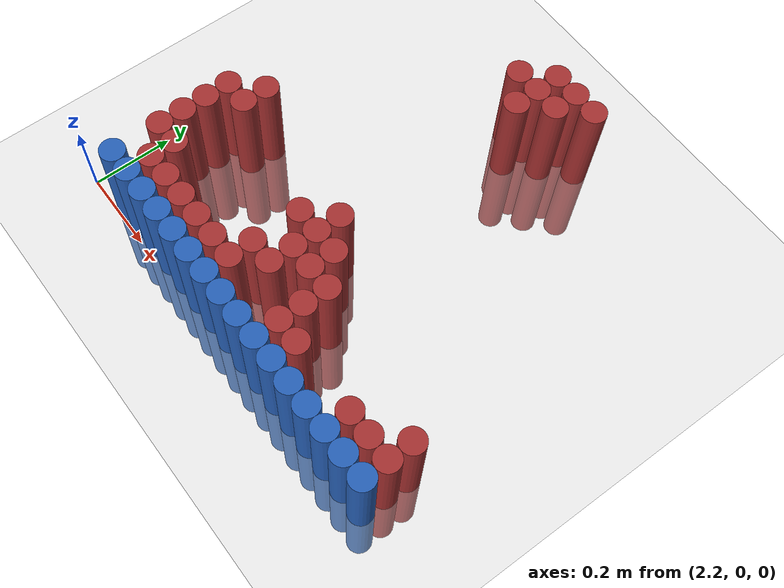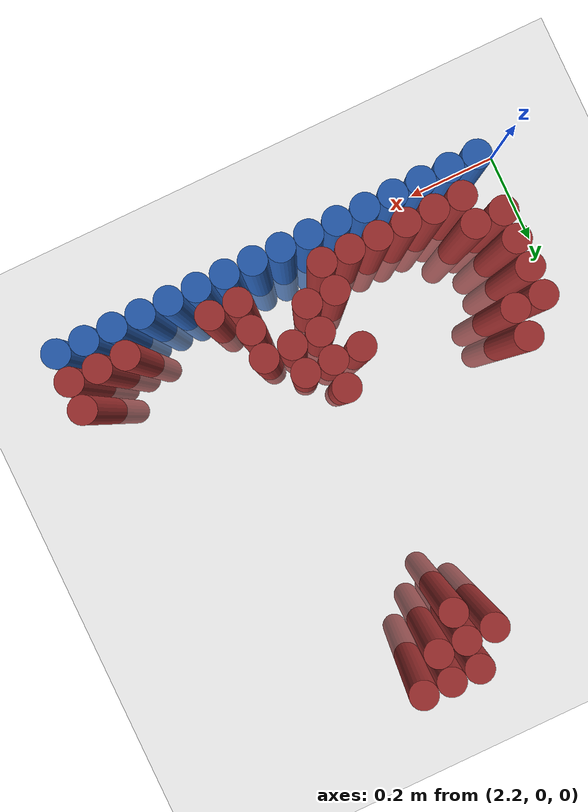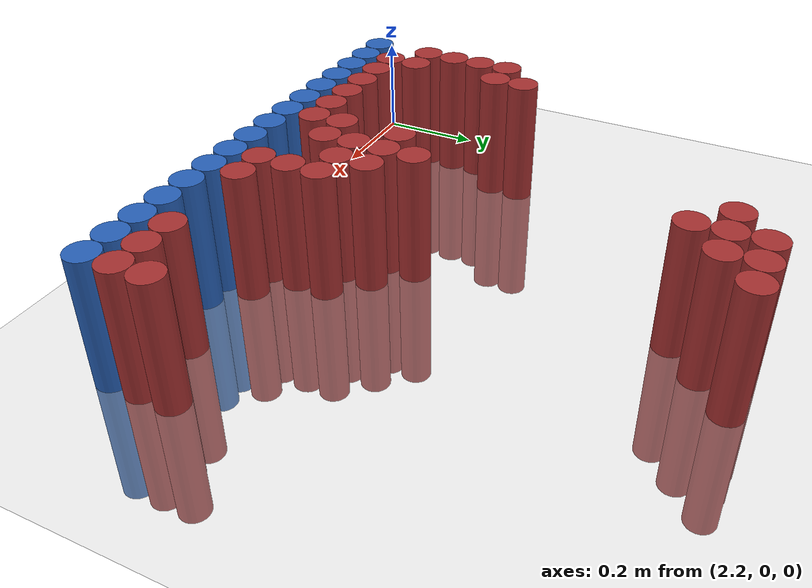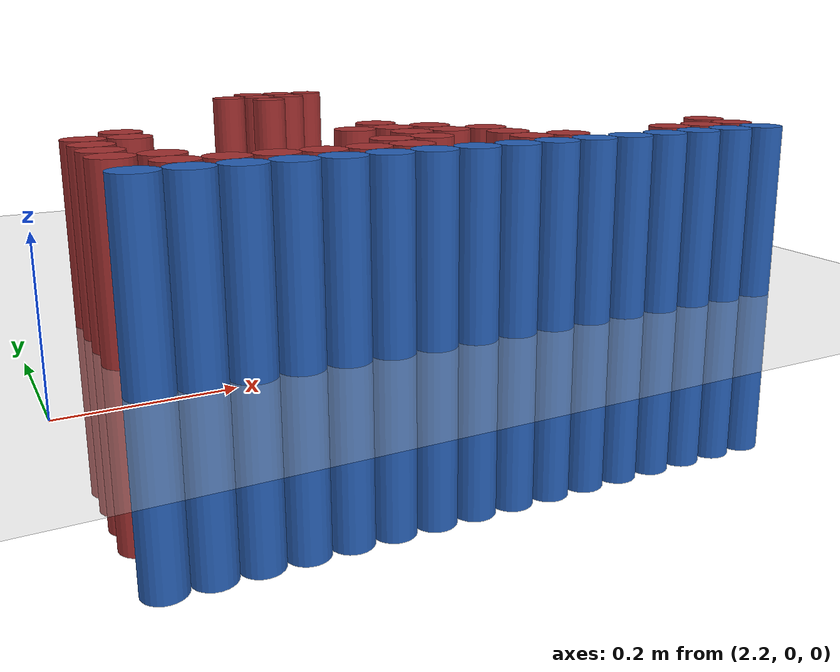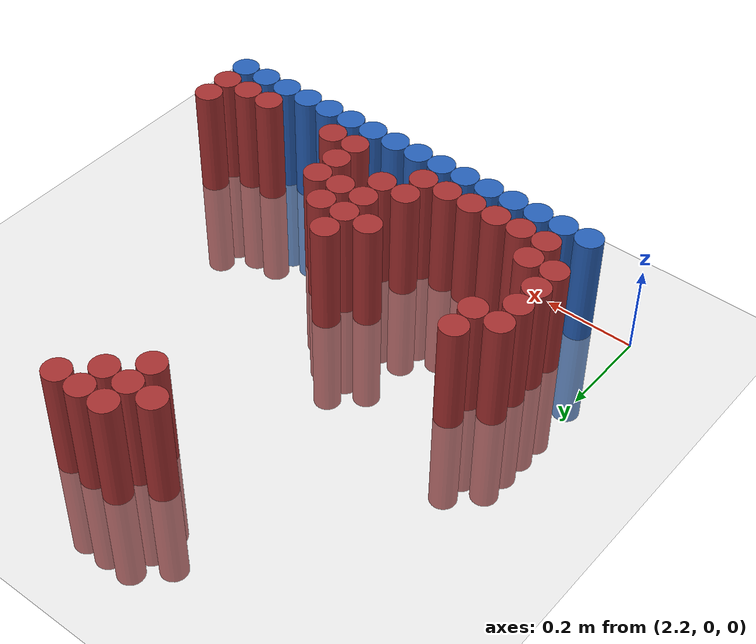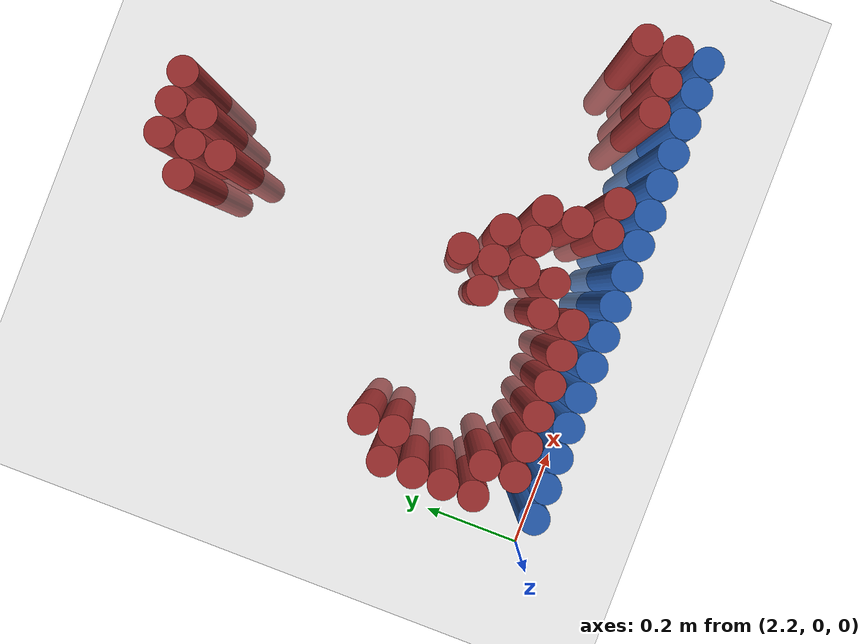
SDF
<sdf version="1.6">
 <world name="default">
  <model name="ground_plane">
   <static>1</static>
   <link name="link">
    <collision name="collision">
     <geometry><plane><normal>0 0 1</normal><size>100 100</size></plane></geometry>
     <surface><friction><ode><mu>100</mu><mu2>50</mu2></ode></friction></surface>
    </collision>
    <visual name="visual">
     <cast_shadows>0</cast_shadows>
     <geometry><plane><normal>0 0 1</normal><size>100 100</size></plane></geometry>
     <material>
      <script><uri>file://media/materials/scripts/gazebo.material</uri><name>Gazebo/Grey</name></script>
     </material>
    </visual>
   </link>
  </model>
  <model name="unit_cylinder_243">
   <static>1</static>
   <pose>2.730000 0.930000 0.000000 0.000000 0.000000 0.000000</pose>
   <link name="link">
    <inertial>
     <mass>1</mass>
     <inertia><ixx>0.145833</ixx><ixy>0</ixy><ixz>0</ixz><iyy>0.145833</iyy><iyz>0</iyz><izz>0.125</izz></inertia>
    </inertial>
    <collision name="collision">
     <geometry><cylinder><radius>0.030000</radius><length>0.5</length></cylinder></geometry>
    </collision>
    <visual name="visual">
     <geometry><cylinder><radius>0.030000</radius><length>0.5</length></cylinder></geometry>
     <material>
      <ambient>0.648000 0.192000 0.192000 1</ambient>
      <diffuse>0.648000 0.192000 0.192000 1</diffuse>
     </material>
     <material>
      <script><name>Gazebo/Grey</name><uri>file://media/materials/scripts/gazebo.material</uri></script>
     </material>
    </visual>
   </link>
  </model>
  <model name="unit_cylinder_244">
   <static>1</static>
   <pose>2.790000 0.930000 0.000000 0.000000 0.000000 0.000000</pose>
   <link name="link">
    <inertial>
     <mass>1</mass>
     <inertia><ixx>0.145833</ixx><ixy>0</ixy><ixz>0</ixz><iyy>0.145833</iyy><iyz>0</iyz><izz>0.125</izz></inertia>
    </inertial>
    <collision name="collision">
     <geometry><cylinder><radius>0.030000</radius><length>0.5</length></cylinder></geometry>
    </collision>
    <visual name="visual">
     <geometry><cylinder><radius>0.030000</radius><length>0.5</length></cylinder></geometry>
     <material>
      <ambient>0.648000 0.192000 0.192000 1</ambient>
      <diffuse>0.648000 0.192000 0.192000 1</diffuse>
     </material>
     <material>
      <script><name>Gazebo/Grey</name><uri>file://media/materials/scripts/gazebo.material</uri></script>
     </material>
    </visual>
   </link>
  </model>
  <model name="unit_cylinder_245">
   <static>1</static>
   <pose>2.850000 0.930000 0.000000 0.000000 0.000000 0.000000</pose>
   <link name="link">
    <inertial>
     <mass>1</mass>
     <inertia><ixx>0.145833</ixx><ixy>0</ixy><ixz>0</ixz><iyy>0.145833</iyy><iyz>0</iyz><izz>0.125</izz></inertia>
    </inertial>
    <collision name="collision">
     <geometry><cylinder><radius>0.030000</radius><length>0.5</length></cylinder></geometry>
    </collision>
    <visual name="visual">
     <geometry><cylinder><radius>0.030000</radius><length>0.5</length></cylinder></geometry>
     <material>
      <ambient>0.648000 0.192000 0.192000 1</ambient>
      <diffuse>0.648000 0.192000 0.192000 1</diffuse>
     </material>
     <material>
      <script><name>Gazebo/Grey</name><uri>file://media/materials/scripts/gazebo.material</uri></script>
     </material>
    </visual>
   </link>
  </model>
  <model name="unit_cylinder_249">
   <static>1</static>
   <pose>2.670000 0.870000 0.000000 0.000000 0.000000 0.000000</pose>
   <link name="link">
    <inertial>
     <mass>1</mass>
     <inertia><ixx>0.145833</ixx><ixy>0</ixy><ixz>0</ixz><iyy>0.145833</iyy><iyz>0</iyz><izz>0.125</izz></inertia>
    </inertial>
    <collision name="collision">
     <geometry><cylinder><radius>0.030000</radius><length>0.5</length></cylinder></geometry>
    </collision>
    <visual name="visual">
     <geometry><cylinder><radius>0.030000</radius><length>0.5</length></cylinder></geometry>
     <material>
      <ambient>0.648000 0.192000 0.192000 1</ambient>
      <diffuse>0.648000 0.192000 0.192000 1</diffuse>
     </material>
     <material>
      <script><name>Gazebo/Grey</name><uri>file://media/materials/scripts/gazebo.material</uri></script>
     </material>
    </visual>
   </link>
  </model>
  <model name="unit_cylinder_250">
   <static>1</static>
   <pose>2.730000 0.870000 0.000000 0.000000 0.000000 0.000000</pose>
   <link name="link">
    <inertial>
     <mass>1</mass>
     <inertia><ixx>0.145833</ixx><ixy>0</ixy><ixz>0</ixz><iyy>0.145833</iyy><iyz>0</iyz><izz>0.125</izz></inertia>
    </inertial>
    <collision name="collision">
     <geometry><cylinder><radius>0.030000</radius><length>0.5</length></cylinder></geometry>
    </collision>
    <visual name="visual">
     <geometry><cylinder><radius>0.030000</radius><length>0.5</length></cylinder></geometry>
     <material>
      <ambient>0.648000 0.192000 0.192000 1</ambient>
      <diffuse>0.648000 0.192000 0.192000 1</diffuse>
     </material>
     <material>
      <script><name>Gazebo/Grey</name><uri>file://media/materials/scripts/gazebo.material</uri></script>
     </material>
    </visual>
   </link>
  </model>
  <model name="unit_cylinder_251">
   <static>1</static>
   <pose>2.790000 0.870000 0.000000 0.000000 0.000000 0.000000</pose>
   <link name="link">
    <inertial>
     <mass>1</mass>
     <inertia><ixx>0.145833</ixx><ixy>0</ixy><ixz>0</ixz><iyy>0.145833</iyy><iyz>0</iyz><izz>0.125</izz></inertia>
    </inertial>
    <collision name="collision">
     <geometry><cylinder><radius>0.030000</radius><length>0.5</length></cylinder></geometry>
    </collision>
    <visual name="visual">
     <geometry><cylinder><radius>0.030000</radius><length>0.5</length></cylinder></geometry>
     <material>
      <ambient>0.648000 0.192000 0.192000 1</ambient>
      <diffuse>0.648000 0.192000 0.192000 1</diffuse>
     </material>
     <material>
      <script><name>Gazebo/Grey</name><uri>file://media/materials/scripts/gazebo.material</uri></script>
     </material>
    </visual>
   </link>
  </model>
  <model name="unit_cylinder_255">
   <static>1</static>
   <pose>2.730000 0.810000 0.000000 0.000000 0.000000 0.000000</pose>
   <link name="link">
    <inertial>
     <mass>1</mass>
     <inertia><ixx>0.145833</ixx><ixy>0</ixy><ixz>0</ixz><iyy>0.145833</iyy><iyz>0</iyz><izz>0.125</izz></inertia>
    </inertial>
    <collision name="collision">
     <geometry><cylinder><radius>0.030000</radius><length>0.5</length></cylinder></geometry>
    </collision>
    <visual name="visual">
     <geometry><cylinder><radius>0.030000</radius><length>0.5</length></cylinder></geometry>
     <material>
      <ambient>0.648000 0.192000 0.192000 1</ambient>
      <diffuse>0.648000 0.192000 0.192000 1</diffuse>
     </material>
     <material>
      <script><name>Gazebo/Grey</name><uri>file://media/materials/scripts/gazebo.material</uri></script>
     </material>
    </visual>
   </link>
  </model>
  <model name="unit_cylinder_284">
   <static>1</static>
   <pose>2.370000 0.390000 0.000000 0.000000 0.000000 0.000000</pose>
   <link name="link">
    <inertial>
     <mass>1</mass>
     <inertia><ixx>0.145833</ixx><ixy>0</ixy><ixz>0</ixz><iyy>0.145833</iyy><iyz>0</iyz><izz>0.125</izz></inertia>
    </inertial>
    <collision name="collision">
     <geometry><cylinder><radius>0.030000</radius><length>0.5</length></cylinder></geometry>
    </collision>
    <visual name="visual">
     <geometry><cylinder><radius>0.030000</radius><length>0.5</length></cylinder></geometry>
     <material>
      <ambient>0.648000 0.192000 0.192000 1</ambient>
      <diffuse>0.648000 0.192000 0.192000 1</diffuse>
     </material>
     <material>
      <script><name>Gazebo/Grey</name><uri>file://media/materials/scripts/gazebo.material</uri></script>
     </material>
    </visual>
   </link>
  </model>
  <model name="unit_cylinder_290">
   <static>1</static>
   <pose>2.310000 0.330000 0.000000 0.000000 0.000000 0.000000</pose>
   <link name="link">
    <inertial>
     <mass>1</mass>
     <inertia><ixx>0.145833</ixx><ixy>0</ixy><ixz>0</ixz><iyy>0.145833</iyy><iyz>0</iyz><izz>0.125</izz></inertia>
    </inertial>
    <collision name="collision">
     <geometry><cylinder><radius>0.030000</radius><length>0.5</length></cylinder></geometry>
    </collision>
    <visual name="visual">
     <geometry><cylinder><radius>0.030000</radius><length>0.5</length></cylinder></geometry>
     <material>
      <ambient>0.648000 0.192000 0.192000 1</ambient>
      <diffuse>0.648000 0.192000 0.192000 1</diffuse>
     </material>
     <material>
      <script><name>Gazebo/Grey</name><uri>file://media/materials/scripts/gazebo.material</uri></script>
     </material>
    </visual>
   </link>
  </model>
  <model name="unit_cylinder_291">
   <static>1</static>
   <pose>2.370000 0.330000 0.000000 0.000000 0.000000 0.000000</pose>
   <link name="link">
    <inertial>
     <mass>1</mass>
     <inertia><ixx>0.145833</ixx><ixy>0</ixy><ixz>0</ixz><iyy>0.145833</iyy><iyz>0</iyz><izz>0.125</izz></inertia>
    </inertial>
    <collision name="collision">
     <geometry><cylinder><radius>0.030000</radius><length>0.5</length></cylinder></geometry>
    </collision>
    <visual name="visual">
     <geometry><cylinder><radius>0.030000</radius><length>0.5</length></cylinder></geometry>
     <material>
      <ambient>0.648000 0.192000 0.192000 1</ambient>
      <diffuse>0.648000 0.192000 0.192000 1</diffuse>
     </material>
     <material>
      <script><name>Gazebo/Grey</name><uri>file://media/materials/scripts/gazebo.material</uri></script>
     </material>
    </visual>
   </link>
  </model>
  <model name="unit_cylinder_292">
   <static>1</static>
   <pose>2.730000 0.330000 0.000000 0.000000 0.000000 0.000000</pose>
   <link name="link">
    <inertial>
     <mass>1</mass>
     <inertia><ixx>0.145833</ixx><ixy>0</ixy><ixz>0</ixz><iyy>0.145833</iyy><iyz>0</iyz><izz>0.125</izz></inertia>
    </inertial>
    <collision name="collision">
     <geometry><cylinder><radius>0.030000</radius><length>0.5</length></cylinder></geometry>
    </collision>
    <visual name="visual">
     <geometry><cylinder><radius>0.030000</radius><length>0.5</length></cylinder></geometry>
     <material>
      <ambient>0.648000 0.192000 0.192000 1</ambient>
      <diffuse>0.648000 0.192000 0.192000 1</diffuse>
     </material>
     <material>
      <script><name>Gazebo/Grey</name><uri>file://media/materials/scripts/gazebo.material</uri></script>
     </material>
    </visual>
   </link>
  </model>
  <model name="unit_cylinder_296">
   <static>1</static>
   <pose>2.310000 0.270000 0.000000 0.000000 0.000000 0.000000</pose>
   <link name="link">
    <inertial>
     <mass>1</mass>
     <inertia><ixx>0.145833</ixx><ixy>0</ixy><ixz>0</ixz><iyy>0.145833</iyy><iyz>0</iyz><izz>0.125</izz></inertia>
    </inertial>
    <collision name="collision">
     <geometry><cylinder><radius>0.030000</radius><length>0.5</length></cylinder></geometry>
    </collision>
    <visual name="visual">
     <geometry><cylinder><radius>0.030000</radius><length>0.5</length></cylinder></geometry>
     <material>
      <ambient>0.648000 0.192000 0.192000 1</ambient>
      <diffuse>0.648000 0.192000 0.192000 1</diffuse>
     </material>
     <material>
      <script><name>Gazebo/Grey</name><uri>file://media/materials/scripts/gazebo.material</uri></script>
     </material>
    </visual>
   </link>
  </model>
  <model name="unit_cylinder_297">
   <static>1</static>
   <pose>2.670000 0.270000 0.000000 0.000000 0.000000 0.000000</pose>
   <link name="link">
    <inertial>
     <mass>1</mass>
     <inertia><ixx>0.145833</ixx><ixy>0</ixy><ixz>0</ixz><iyy>0.145833</iyy><iyz>0</iyz><izz>0.125</izz></inertia>
    </inertial>
    <collision name="collision">
     <geometry><cylinder><radius>0.030000</radius><length>0.5</length></cylinder></geometry>
    </collision>
    <visual name="visual">
     <geometry><cylinder><radius>0.030000</radius><length>0.5</length></cylinder></geometry>
     <material>
      <ambient>0.648000 0.192000 0.192000 1</ambient>
      <diffuse>0.648000 0.192000 0.192000 1</diffuse>
     </material>
     <material>
      <script><name>Gazebo/Grey</name><uri>file://media/materials/scripts/gazebo.material</uri></script>
     </material>
    </visual>
   </link>
  </model>
  <model name="unit_cylinder_298">
   <static>1</static>
   <pose>2.730000 0.270000 0.000000 0.000000 0.000000 0.000000</pose>
   <link name="link">
    <inertial>
     <mass>1</mass>
     <inertia><ixx>0.145833</ixx><ixy>0</ixy><ixz>0</ixz><iyy>0.145833</iyy><iyz>0</iyz><izz>0.125</izz></inertia>
    </inertial>
    <collision name="collision">
     <geometry><cylinder><radius>0.030000</radius><length>0.5</length></cylinder></geometry>
    </collision>
    <visual name="visual">
     <geometry><cylinder><radius>0.030000</radius><length>0.5</length></cylinder></geometry>
     <material>
      <ambient>0.648000 0.192000 0.192000 1</ambient>
      <diffuse>0.648000 0.192000 0.192000 1</diffuse>
     </material>
     <material>
      <script><name>Gazebo/Grey</name><uri>file://media/materials/scripts/gazebo.material</uri></script>
     </material>
    </visual>
   </link>
  </model>
  <model name="unit_cylinder_299">
   <static>1</static>
   <pose>2.790000 0.270000 0.000000 0.000000 0.000000 0.000000</pose>
   <link name="link">
    <inertial>
     <mass>1</mass>
     <inertia><ixx>0.145833</ixx><ixy>0</ixy><ixz>0</ixz><iyy>0.145833</iyy><iyz>0</iyz><izz>0.125</izz></inertia>
    </inertial>
    <collision name="collision">
     <geometry><cylinder><radius>0.030000</radius><length>0.5</length></cylinder></geometry>
    </collision>
    <visual name="visual">
     <geometry><cylinder><radius>0.030000</radius><length>0.5</length></cylinder></geometry>
     <material>
      <ambient>0.648000 0.192000 0.192000 1</ambient>
      <diffuse>0.648000 0.192000 0.192000 1</diffuse>
     </material>
     <material>
      <script><name>Gazebo/Grey</name><uri>file://media/materials/scripts/gazebo.material</uri></script>
     </material>
    </visual>
   </link>
  </model>
  <model name="unit_cylinder_301">
   <static>1</static>
   <pose>2.310000 0.210000 0.000000 0.000000 0.000000 0.000000</pose>
   <link name="link">
    <inertial>
     <mass>1</mass>
     <inertia><ixx>0.145833</ixx><ixy>0</ixy><ixz>0</ixz><iyy>0.145833</iyy><iyz>0</iyz><izz>0.125</izz></inertia>
    </inertial>
    <collision name="collision">
     <geometry><cylinder><radius>0.030000</radius><length>0.5</length></cylinder></geometry>
    </collision>
    <visual name="visual">
     <geometry><cylinder><radius>0.030000</radius><length>0.5</length></cylinder></geometry>
     <material>
      <ambient>0.648000 0.192000 0.192000 1</ambient>
      <diffuse>0.648000 0.192000 0.192000 1</diffuse>
     </material>
     <material>
      <script><name>Gazebo/Grey</name><uri>file://media/materials/scripts/gazebo.material</uri></script>
     </material>
    </visual>
   </link>
  </model>
  <model name="unit_cylinder_302">
   <static>1</static>
   <pose>2.730000 0.210000 0.000000 0.000000 0.000000 0.000000</pose>
   <link name="link">
    <inertial>
     <mass>1</mass>
     <inertia><ixx>0.145833</ixx><ixy>0</ixy><ixz>0</ixz><iyy>0.145833</iyy><iyz>0</iyz><izz>0.125</izz></inertia>
    </inertial>
    <collision name="collision">
     <geometry><cylinder><radius>0.030000</radius><length>0.5</length></cylinder></geometry>
    </collision>
    <visual name="visual">
     <geometry><cylinder><radius>0.030000</radius><length>0.5</length></cylinder></geometry>
     <material>
      <ambient>0.648000 0.192000 0.192000 1</ambient>
      <diffuse>0.648000 0.192000 0.192000 1</diffuse>
     </material>
     <material>
      <script><name>Gazebo/Grey</name><uri>file://media/materials/scripts/gazebo.material</uri></script>
     </material>
    </visual>
   </link>
  </model>
  <model name="unit_cylinder_303">
   <static>1</static>
   <pose>2.790000 0.210000 0.000000 0.000000 0.000000 0.000000</pose>
   <link name="link">
    <inertial>
     <mass>1</mass>
     <inertia><ixx>0.145833</ixx><ixy>0</ixy><ixz>0</ixz><iyy>0.145833</iyy><iyz>0</iyz><izz>0.125</izz></inertia>
    </inertial>
    <collision name="collision">
     <geometry><cylinder><radius>0.030000</radius><length>0.5</length></cylinder></geometry>
    </collision>
    <visual name="visual">
     <geometry><cylinder><radius>0.030000</radius><length>0.5</length></cylinder></geometry>
     <material>
      <ambient>0.648000 0.192000 0.192000 1</ambient>
      <diffuse>0.648000 0.192000 0.192000 1</diffuse>
     </material>
     <material>
      <script><name>Gazebo/Grey</name><uri>file://media/materials/scripts/gazebo.material</uri></script>
     </material>
    </visual>
   </link>
  </model>
  <model name="unit_cylinder_304">
   <static>1</static>
   <pose>2.850000 0.210000 0.000000 0.000000 0.000000 0.000000</pose>
   <link name="link">
    <inertial>
     <mass>1</mass>
     <inertia><ixx>0.145833</ixx><ixy>0</ixy><ixz>0</ixz><iyy>0.145833</iyy><iyz>0</iyz><izz>0.125</izz></inertia>
    </inertial>
    <collision name="collision">
     <geometry><cylinder><radius>0.030000</radius><length>0.5</length></cylinder></geometry>
    </collision>
    <visual name="visual">
     <geometry><cylinder><radius>0.030000</radius><length>0.5</length></cylinder></geometry>
     <material>
      <ambient>0.648000 0.192000 0.192000 1</ambient>
      <diffuse>0.648000 0.192000 0.192000 1</diffuse>
     </material>
     <material>
      <script><name>Gazebo/Grey</name><uri>file://media/materials/scripts/gazebo.material</uri></script>
     </material>
    </visual>
   </link>
  </model>
  <model name="unit_cylinder_307">
   <static>1</static>
   <pose>2.310000 0.150000 0.000000 0.000000 0.000000 0.000000</pose>
   <link name="link">
    <inertial>
     <mass>1</mass>
     <inertia><ixx>0.145833</ixx><ixy>0</ixy><ixz>0</ixz><iyy>0.145833</iyy><iyz>0</iyz><izz>0.125</izz></inertia>
    </inertial>
    <collision name="collision">
     <geometry><cylinder><radius>0.030000</radius><length>0.5</length></cylinder></geometry>
    </collision>
    <visual name="visual">
     <geometry><cylinder><radius>0.030000</radius><length>0.5</length></cylinder></geometry>
     <material>
      <ambient>0.648000 0.192000 0.192000 1</ambient>
      <diffuse>0.648000 0.192000 0.192000 1</diffuse>
     </material>
     <material>
      <script><name>Gazebo/Grey</name><uri>file://media/materials/scripts/gazebo.material</uri></script>
     </material>
    </visual>
   </link>
  </model>
  <model name="unit_cylinder_308">
   <static>1</static>
   <pose>2.370000 0.150000 0.000000 0.000000 0.000000 0.000000</pose>
   <link name="link">
    <inertial>
     <mass>1</mass>
     <inertia><ixx>0.145833</ixx><ixy>0</ixy><ixz>0</ixz><iyy>0.145833</iyy><iyz>0</iyz><izz>0.125</izz></inertia>
    </inertial>
    <collision name="collision">
     <geometry><cylinder><radius>0.030000</radius><length>0.5</length></cylinder></geometry>
    </collision>
    <visual name="visual">
     <geometry><cylinder><radius>0.030000</radius><length>0.5</length></cylinder></geometry>
     <material>
      <ambient>0.648000 0.192000 0.192000 1</ambient>
      <diffuse>0.648000 0.192000 0.192000 1</diffuse>
     </material>
     <material>
      <script><name>Gazebo/Grey</name><uri>file://media/materials/scripts/gazebo.material</uri></script>
     </material>
    </visual>
   </link>
  </model>
  <model name="unit_cylinder_309">
   <static>1</static>
   <pose>2.670000 0.150000 0.000000 0.000000 0.000000 0.000000</pose>
   <link name="link">
    <inertial>
     <mass>1</mass>
     <inertia><ixx>0.145833</ixx><ixy>0</ixy><ixz>0</ixz><iyy>0.145833</iyy><iyz>0</iyz><izz>0.125</izz></inertia>
    </inertial>
    <collision name="collision">
     <geometry><cylinder><radius>0.030000</radius><length>0.5</length></cylinder></geometry>
    </collision>
    <visual name="visual">
     <geometry><cylinder><radius>0.030000</radius><length>0.5</length></cylinder></geometry>
     <material>
      <ambient>0.648000 0.192000 0.192000 1</ambient>
      <diffuse>0.648000 0.192000 0.192000 1</diffuse>
     </material>
     <material>
      <script><name>Gazebo/Grey</name><uri>file://media/materials/scripts/gazebo.material</uri></script>
     </material>
    </visual>
   </link>
  </model>
  <model name="unit_cylinder_310">
   <static>1</static>
   <pose>2.730000 0.150000 0.000000 0.000000 0.000000 0.000000</pose>
   <link name="link">
    <inertial>
     <mass>1</mass>
     <inertia><ixx>0.145833</ixx><ixy>0</ixy><ixz>0</ixz><iyy>0.145833</iyy><iyz>0</iyz><izz>0.125</izz></inertia>
    </inertial>
    <collision name="collision">
     <geometry><cylinder><radius>0.030000</radius><length>0.5</length></cylinder></geometry>
    </collision>
    <visual name="visual">
     <geometry><cylinder><radius>0.030000</radius><length>0.5</length></cylinder></geometry>
     <material>
      <ambient>0.648000 0.192000 0.192000 1</ambient>
      <diffuse>0.648000 0.192000 0.192000 1</diffuse>
     </material>
     <material>
      <script><name>Gazebo/Grey</name><uri>file://media/materials/scripts/gazebo.material</uri></script>
     </material>
    </visual>
   </link>
  </model>
  <model name="unit_cylinder_311">
   <static>1</static>
   <pose>2.850000 0.150000 0.000000 0.000000 0.000000 0.000000</pose>
   <link name="link">
    <inertial>
     <mass>1</mass>
     <inertia><ixx>0.145833</ixx><ixy>0</ixy><ixz>0</ixz><iyy>0.145833</iyy><iyz>0</iyz><izz>0.125</izz></inertia>
    </inertial>
    <collision name="collision">
     <geometry><cylinder><radius>0.030000</radius><length>0.5</length></cylinder></geometry>
    </collision>
    <visual name="visual">
     <geometry><cylinder><radius>0.030000</radius><length>0.5</length></cylinder></geometry>
     <material>
      <ambient>0.648000 0.192000 0.192000 1</ambient>
      <diffuse>0.648000 0.192000 0.192000 1</diffuse>
     </material>
     <material>
      <script><name>Gazebo/Grey</name><uri>file://media/materials/scripts/gazebo.material</uri></script>
     </material>
    </visual>
   </link>
  </model>
  <model name="unit_cylinder_312">
   <static>1</static>
   <pose>3.210000 0.150000 0.000000 0.000000 0.000000 0.000000</pose>
   <link name="link">
    <inertial>
     <mass>1</mass>
     <inertia><ixx>0.145833</ixx><ixy>0</ixy><ixz>0</ixz><iyy>0.145833</iyy><iyz>0</iyz><izz>0.125</izz></inertia>
    </inertial>
    <collision name="collision">
     <geometry><cylinder><radius>0.030000</radius><length>0.5</length></cylinder></geometry>
    </collision>
    <visual name="visual">
     <geometry><cylinder><radius>0.030000</radius><length>0.5</length></cylinder></geometry>
     <material>
      <ambient>0.648000 0.192000 0.192000 1</ambient>
      <diffuse>0.648000 0.192000 0.192000 1</diffuse>
     </material>
     <material>
      <script><name>Gazebo/Grey</name><uri>file://media/materials/scripts/gazebo.material</uri></script>
     </material>
    </visual>
   </link>
  </model>
  <model name="unit_cylinder_319">
   <static>1</static>
   <pose>2.370000 0.090000 0.000000 0.000000 0.000000 0.000000</pose>
   <link name="link">
    <inertial>
     <mass>1</mass>
     <inertia><ixx>0.145833</ixx><ixy>0</ixy><ixz>0</ixz><iyy>0.145833</iyy><iyz>0</iyz><izz>0.125</izz></inertia>
    </inertial>
    <collision name="collision">
     <geometry><cylinder><radius>0.030000</radius><length>0.5</length></cylinder></geometry>
    </collision>
    <visual name="visual">
     <geometry><cylinder><radius>0.030000</radius><length>0.5</length></cylinder></geometry>
     <material>
      <ambient>0.648000 0.192000 0.192000 1</ambient>
      <diffuse>0.648000 0.192000 0.192000 1</diffuse>
     </material>
     <material>
      <script><name>Gazebo/Grey</name><uri>file://media/materials/scripts/gazebo.material</uri></script>
     </material>
    </visual>
   </link>
  </model>
  <model name="unit_cylinder_320">
   <static>1</static>
   <pose>2.430000 0.090000 0.000000 0.000000 0.000000 0.000000</pose>
   <link name="link">
    <inertial>
     <mass>1</mass>
     <inertia><ixx>0.145833</ixx><ixy>0</ixy><ixz>0</ixz><iyy>0.145833</iyy><iyz>0</iyz><izz>0.125</izz></inertia>
    </inertial>
    <collision name="collision">
     <geometry><cylinder><radius>0.030000</radius><length>0.5</length></cylinder></geometry>
    </collision>
    <visual name="visual">
     <geometry><cylinder><radius>0.030000</radius><length>0.5</length></cylinder></geometry>
     <material>
      <ambient>0.648000 0.192000 0.192000 1</ambient>
      <diffuse>0.648000 0.192000 0.192000 1</diffuse>
     </material>
     <material>
      <script><name>Gazebo/Grey</name><uri>file://media/materials/scripts/gazebo.material</uri></script>
     </material>
    </visual>
   </link>
  </model>
  <model name="unit_cylinder_321">
   <static>1</static>
   <pose>2.490000 0.090000 0.000000 0.000000 0.000000 0.000000</pose>
   <link name="link">
    <inertial>
     <mass>1</mass>
     <inertia><ixx>0.145833</ixx><ixy>0</ixy><ixz>0</ixz><iyy>0.145833</iyy><iyz>0</iyz><izz>0.125</izz></inertia>
    </inertial>
    <collision name="collision">
     <geometry><cylinder><radius>0.030000</radius><length>0.5</length></cylinder></geometry>
    </collision>
    <visual name="visual">
     <geometry><cylinder><radius>0.030000</radius><length>0.5</length></cylinder></geometry>
     <material>
      <ambient>0.648000 0.192000 0.192000 1</ambient>
      <diffuse>0.648000 0.192000 0.192000 1</diffuse>
     </material>
     <material>
      <script><name>Gazebo/Grey</name><uri>file://media/materials/scripts/gazebo.material</uri></script>
     </material>
    </visual>
   </link>
  </model>
  <model name="unit_cylinder_322">
   <static>1</static>
   <pose>2.550000 0.090000 0.000000 0.000000 0.000000 0.000000</pose>
   <link name="link">
    <inertial>
     <mass>1</mass>
     <inertia><ixx>0.145833</ixx><ixy>0</ixy><ixz>0</ixz><iyy>0.145833</iyy><iyz>0</iyz><izz>0.125</izz></inertia>
    </inertial>
    <collision name="collision">
     <geometry><cylinder><radius>0.030000</radius><length>0.5</length></cylinder></geometry>
    </collision>
    <visual name="visual">
     <geometry><cylinder><radius>0.030000</radius><length>0.5</length></cylinder></geometry>
     <material>
      <ambient>0.648000 0.192000 0.192000 1</ambient>
      <diffuse>0.648000 0.192000 0.192000 1</diffuse>
     </material>
     <material>
      <script><name>Gazebo/Grey</name><uri>file://media/materials/scripts/gazebo.material</uri></script>
     </material>
    </visual>
   </link>
  </model>
  <model name="unit_cylinder_323">
   <static>1</static>
   <pose>2.610000 0.090000 0.000000 0.000000 0.000000 0.000000</pose>
   <link name="link">
    <inertial>
     <mass>1</mass>
     <inertia><ixx>0.145833</ixx><ixy>0</ixy><ixz>0</ixz><iyy>0.145833</iyy><iyz>0</iyz><izz>0.125</izz></inertia>
    </inertial>
    <collision name="collision">
     <geometry><cylinder><radius>0.030000</radius><length>0.5</length></cylinder></geometry>
    </collision>
    <visual name="visual">
     <geometry><cylinder><radius>0.030000</radius><length>0.5</length></cylinder></geometry>
     <material>
      <ambient>0.648000 0.192000 0.192000 1</ambient>
      <diffuse>0.648000 0.192000 0.192000 1</diffuse>
     </material>
     <material>
      <script><name>Gazebo/Grey</name><uri>file://media/materials/scripts/gazebo.material</uri></script>
     </material>
    </visual>
   </link>
  </model>
  <model name="unit_cylinder_324">
   <static>1</static>
   <pose>2.670000 0.090000 0.000000 0.000000 0.000000 0.000000</pose>
   <link name="link">
    <inertial>
     <mass>1</mass>
     <inertia><ixx>0.145833</ixx><ixy>0</ixy><ixz>0</ixz><iyy>0.145833</iyy><iyz>0</iyz><izz>0.125</izz></inertia>
    </inertial>
    <collision name="collision">
     <geometry><cylinder><radius>0.030000</radius><length>0.5</length></cylinder></geometry>
    </collision>
    <visual name="visual">
     <geometry><cylinder><radius>0.030000</radius><length>0.5</length></cylinder></geometry>
     <material>
      <ambient>0.648000 0.192000 0.192000 1</ambient>
      <diffuse>0.648000 0.192000 0.192000 1</diffuse>
     </material>
     <material>
      <script><name>Gazebo/Grey</name><uri>file://media/materials/scripts/gazebo.material</uri></script>
     </material>
    </visual>
   </link>
  </model>
  <model name="unit_cylinder_325">
   <static>1</static>
   <pose>2.850000 0.090000 0.000000 0.000000 0.000000 0.000000</pose>
   <link name="link">
    <inertial>
     <mass>1</mass>
     <inertia><ixx>0.145833</ixx><ixy>0</ixy><ixz>0</ixz><iyy>0.145833</iyy><iyz>0</iyz><izz>0.125</izz></inertia>
    </inertial>
    <collision name="collision">
     <geometry><cylinder><radius>0.030000</radius><length>0.5</length></cylinder></geometry>
    </collision>
    <visual name="visual">
     <geometry><cylinder><radius>0.030000</radius><length>0.5</length></cylinder></geometry>
     <material>
      <ambient>0.648000 0.192000 0.192000 1</ambient>
      <diffuse>0.648000 0.192000 0.192000 1</diffuse>
     </material>
     <material>
      <script><name>Gazebo/Grey</name><uri>file://media/materials/scripts/gazebo.material</uri></script>
     </material>
    </visual>
   </link>
  </model>
  <model name="unit_cylinder_326">
   <static>1</static>
   <pose>2.910000 0.090000 0.000000 0.000000 0.000000 0.000000</pose>
   <link name="link">
    <inertial>
     <mass>1</mass>
     <inertia><ixx>0.145833</ixx><ixy>0</ixy><ixz>0</ixz><iyy>0.145833</iyy><iyz>0</iyz><izz>0.125</izz></inertia>
    </inertial>
    <collision name="collision">
     <geometry><cylinder><radius>0.030000</radius><length>0.5</length></cylinder></geometry>
    </collision>
    <visual name="visual">
     <geometry><cylinder><radius>0.030000</radius><length>0.5</length></cylinder></geometry>
     <material>
      <ambient>0.648000 0.192000 0.192000 1</ambient>
      <diffuse>0.648000 0.192000 0.192000 1</diffuse>
     </material>
     <material>
      <script><name>Gazebo/Grey</name><uri>file://media/materials/scripts/gazebo.material</uri></script>
     </material>
    </visual>
   </link>
  </model>
  <model name="unit_cylinder_327">
   <static>1</static>
   <pose>3.090000 0.090000 0.000000 0.000000 0.000000 0.000000</pose>
   <link name="link">
    <inertial>
     <mass>1</mass>
     <inertia><ixx>0.145833</ixx><ixy>0</ixy><ixz>0</ixz><iyy>0.145833</iyy><iyz>0</iyz><izz>0.125</izz></inertia>
    </inertial>
    <collision name="collision">
     <geometry><cylinder><radius>0.030000</radius><length>0.5</length></cylinder></geometry>
    </collision>
    <visual name="visual">
     <geometry><cylinder><radius>0.030000</radius><length>0.5</length></cylinder></geometry>
     <material>
      <ambient>0.648000 0.192000 0.192000 1</ambient>
      <diffuse>0.648000 0.192000 0.192000 1</diffuse>
     </material>
     <material>
      <script><name>Gazebo/Grey</name><uri>file://media/materials/scripts/gazebo.material</uri></script>
     </material>
    </visual>
   </link>
  </model>
  <model name="unit_cylinder_328">
   <static>1</static>
   <pose>3.150000 0.090000 0.000000 0.000000 0.000000 0.000000</pose>
   <link name="link">
    <inertial>
     <mass>1</mass>
     <inertia><ixx>0.145833</ixx><ixy>0</ixy><ixz>0</ixz><iyy>0.145833</iyy><iyz>0</iyz><izz>0.125</izz></inertia>
    </inertial>
    <collision name="collision">
     <geometry><cylinder><radius>0.030000</radius><length>0.5</length></cylinder></geometry>
    </collision>
    <visual name="visual">
     <geometry><cylinder><radius>0.030000</radius><length>0.5</length></cylinder></geometry>
     <material>
      <ambient>0.648000 0.192000 0.192000 1</ambient>
      <diffuse>0.648000 0.192000 0.192000 1</diffuse>
     </material>
     <material>
      <script><name>Gazebo/Grey</name><uri>file://media/materials/scripts/gazebo.material</uri></script>
     </material>
    </visual>
   </link>
  </model>
  <model name="unit_cylinder_329">
   <static>1</static>
   <pose>3.210000 0.090000 0.000000 0.000000 0.000000 0.000000</pose>
   <link name="link">
    <inertial>
     <mass>1</mass>
     <inertia><ixx>0.145833</ixx><ixy>0</ixy><ixz>0</ixz><iyy>0.145833</iyy><iyz>0</iyz><izz>0.125</izz></inertia>
    </inertial>
    <collision name="collision">
     <geometry><cylinder><radius>0.030000</radius><length>0.5</length></cylinder></geometry>
    </collision>
    <visual name="visual">
     <geometry><cylinder><radius>0.030000</radius><length>0.5</length></cylinder></geometry>
     <material>
      <ambient>0.648000 0.192000 0.192000 1</ambient>
      <diffuse>0.648000 0.192000 0.192000 1</diffuse>
     </material>
     <material>
      <script><name>Gazebo/Grey</name><uri>file://media/materials/scripts/gazebo.material</uri></script>
     </material>
    </visual>
   </link>
  </model>
  <model name="unit_cylinder_343">
   <static>1</static>
   <pose>2.310000 0.030000 0.000000 0.000000 0.000000 0.000000</pose>
   <link name="link">
    <inertial>
     <mass>1</mass>
     <inertia><ixx>0.145833</ixx><ixy>0</ixy><ixz>0</ixz><iyy>0.145833</iyy><iyz>0</iyz><izz>0.125</izz></inertia>
    </inertial>
    <collision name="collision">
     <geometry><cylinder><radius>0.030000</radius><length>0.5</length></cylinder></geometry>
    </collision>
    <visual name="visual">
     <geometry><cylinder><radius>0.030000</radius><length>0.5</length></cylinder></geometry>
     <material>
      <ambient>0.152000 0.379000 0.720000 1</ambient>
      <diffuse>0.152000 0.379000 0.720000 1</diffuse>
     </material>
     <material>
      <script><name>Gazebo/Grey</name><uri>file://media/materials/scripts/gazebo.material</uri></script>
     </material>
    </visual>
   </link>
  </model>
  <model name="unit_cylinder_344">
   <static>1</static>
   <pose>2.370000 0.030000 0.000000 0.000000 0.000000 0.000000</pose>
   <link name="link">
    <inertial>
     <mass>1</mass>
     <inertia><ixx>0.145833</ixx><ixy>0</ixy><ixz>0</ixz><iyy>0.145833</iyy><iyz>0</iyz><izz>0.125</izz></inertia>
    </inertial>
    <collision name="collision">
     <geometry><cylinder><radius>0.030000</radius><length>0.5</length></cylinder></geometry>
    </collision>
    <visual name="visual">
     <geometry><cylinder><radius>0.030000</radius><length>0.5</length></cylinder></geometry>
     <material>
      <ambient>0.152000 0.379000 0.720000 1</ambient>
      <diffuse>0.152000 0.379000 0.720000 1</diffuse>
     </material>
     <material>
      <script><name>Gazebo/Grey</name><uri>file://media/materials/scripts/gazebo.material</uri></script>
     </material>
    </visual>
   </link>
  </model>
  <model name="unit_cylinder_345">
   <static>1</static>
   <pose>2.430000 0.030000 0.000000 0.000000 0.000000 0.000000</pose>
   <link name="link">
    <inertial>
     <mass>1</mass>
     <inertia><ixx>0.145833</ixx><ixy>0</ixy><ixz>0</ixz><iyy>0.145833</iyy><iyz>0</iyz><izz>0.125</izz></inertia>
    </inertial>
    <collision name="collision">
     <geometry><cylinder><radius>0.030000</radius><length>0.5</length></cylinder></geometry>
    </collision>
    <visual name="visual">
     <geometry><cylinder><radius>0.030000</radius><length>0.5</length></cylinder></geometry>
     <material>
      <ambient>0.152000 0.379000 0.720000 1</ambient>
      <diffuse>0.152000 0.379000 0.720000 1</diffuse>
     </material>
     <material>
      <script><name>Gazebo/Grey</name><uri>file://media/materials/scripts/gazebo.material</uri></script>
     </material>
    </visual>
   </link>
  </model>
  <model name="unit_cylinder_346">
   <static>1</static>
   <pose>2.490000 0.030000 0.000000 0.000000 0.000000 0.000000</pose>
   <link name="link">
    <inertial>
     <mass>1</mass>
     <inertia><ixx>0.145833</ixx><ixy>0</ixy><ixz>0</ixz><iyy>0.145833</iyy><iyz>0</iyz><izz>0.125</izz></inertia>
    </inertial>
    <collision name="collision">
     <geometry><cylinder><radius>0.030000</radius><length>0.5</length></cylinder></geometry>
    </collision>
    <visual name="visual">
     <geometry><cylinder><radius>0.030000</radius><length>0.5</length></cylinder></geometry>
     <material>
      <ambient>0.152000 0.379000 0.720000 1</ambient>
      <diffuse>0.152000 0.379000 0.720000 1</diffuse>
     </material>
     <material>
      <script><name>Gazebo/Grey</name><uri>file://media/materials/scripts/gazebo.material</uri></script>
     </material>
    </visual>
   </link>
  </model>
  <model name="unit_cylinder_347">
   <static>1</static>
   <pose>2.550000 0.030000 0.000000 0.000000 0.000000 0.000000</pose>
   <link name="link">
    <inertial>
     <mass>1</mass>
     <inertia><ixx>0.145833</ixx><ixy>0</ixy><ixz>0</ixz><iyy>0.145833</iyy><iyz>0</iyz><izz>0.125</izz></inertia>
    </inertial>
    <collision name="collision">
     <geometry><cylinder><radius>0.030000</radius><length>0.5</length></cylinder></geometry>
    </collision>
    <visual name="visual">
     <geometry><cylinder><radius>0.030000</radius><length>0.5</length></cylinder></geometry>
     <material>
      <ambient>0.152000 0.379000 0.720000 1</ambient>
      <diffuse>0.152000 0.379000 0.720000 1</diffuse>
     </material>
     <material>
      <script><name>Gazebo/Grey</name><uri>file://media/materials/scripts/gazebo.material</uri></script>
     </material>
    </visual>
   </link>
  </model>
  <model name="unit_cylinder_348">
   <static>1</static>
   <pose>2.610000 0.030000 0.000000 0.000000 0.000000 0.000000</pose>
   <link name="link">
    <inertial>
     <mass>1</mass>
     <inertia><ixx>0.145833</ixx><ixy>0</ixy><ixz>0</ixz><iyy>0.145833</iyy><iyz>0</iyz><izz>0.125</izz></inertia>
    </inertial>
    <collision name="collision">
     <geometry><cylinder><radius>0.030000</radius><length>0.5</length></cylinder></geometry>
    </collision>
    <visual name="visual">
     <geometry><cylinder><radius>0.030000</radius><length>0.5</length></cylinder></geometry>
     <material>
      <ambient>0.152000 0.379000 0.720000 1</ambient>
      <diffuse>0.152000 0.379000 0.720000 1</diffuse>
     </material>
     <material>
      <script><name>Gazebo/Grey</name><uri>file://media/materials/scripts/gazebo.material</uri></script>
     </material>
    </visual>
   </link>
  </model>
  <model name="unit_cylinder_349">
   <static>1</static>
   <pose>2.670000 0.030000 0.000000 0.000000 0.000000 0.000000</pose>
   <link name="link">
    <inertial>
     <mass>1</mass>
     <inertia><ixx>0.145833</ixx><ixy>0</ixy><ixz>0</ixz><iyy>0.145833</iyy><iyz>0</iyz><izz>0.125</izz></inertia>
    </inertial>
    <collision name="collision">
     <geometry><cylinder><radius>0.030000</radius><length>0.5</length></cylinder></geometry>
    </collision>
    <visual name="visual">
     <geometry><cylinder><radius>0.030000</radius><length>0.5</length></cylinder></geometry>
     <material>
      <ambient>0.152000 0.379000 0.720000 1</ambient>
      <diffuse>0.152000 0.379000 0.720000 1</diffuse>
     </material>
     <material>
      <script><name>Gazebo/Grey</name><uri>file://media/materials/scripts/gazebo.material</uri></script>
     </material>
    </visual>
   </link>
  </model>
  <model name="unit_cylinder_350">
   <static>1</static>
   <pose>2.730000 0.030000 0.000000 0.000000 0.000000 0.000000</pose>
   <link name="link">
    <inertial>
     <mass>1</mass>
     <inertia><ixx>0.145833</ixx><ixy>0</ixy><ixz>0</ixz><iyy>0.145833</iyy><iyz>0</iyz><izz>0.125</izz></inertia>
    </inertial>
    <collision name="collision">
     <geometry><cylinder><radius>0.030000</radius><length>0.5</length></cylinder></geometry>
    </collision>
    <visual name="visual">
     <geometry><cylinder><radius>0.030000</radius><length>0.5</length></cylinder></geometry>
     <material>
      <ambient>0.152000 0.379000 0.720000 1</ambient>
      <diffuse>0.152000 0.379000 0.720000 1</diffuse>
     </material>
     <material>
      <script><name>Gazebo/Grey</name><uri>file://media/materials/scripts/gazebo.material</uri></script>
     </material>
    </visual>
   </link>
  </model>
  <model name="unit_cylinder_351">
   <static>1</static>
   <pose>2.790000 0.030000 0.000000 0.000000 0.000000 0.000000</pose>
   <link name="link">
    <inertial>
     <mass>1</mass>
     <inertia><ixx>0.145833</ixx><ixy>0</ixy><ixz>0</ixz><iyy>0.145833</iyy><iyz>0</iyz><izz>0.125</izz></inertia>
    </inertial>
    <collision name="collision">
     <geometry><cylinder><radius>0.030000</radius><length>0.5</length></cylinder></geometry>
    </collision>
    <visual name="visual">
     <geometry><cylinder><radius>0.030000</radius><length>0.5</length></cylinder></geometry>
     <material>
      <ambient>0.152000 0.379000 0.720000 1</ambient>
      <diffuse>0.152000 0.379000 0.720000 1</diffuse>
     </material>
     <material>
      <script><name>Gazebo/Grey</name><uri>file://media/materials/scripts/gazebo.material</uri></script>
     </material>
    </visual>
   </link>
  </model>
  <model name="unit_cylinder_352">
   <static>1</static>
   <pose>2.850000 0.030000 0.000000 0.000000 0.000000 0.000000</pose>
   <link name="link">
    <inertial>
     <mass>1</mass>
     <inertia><ixx>0.145833</ixx><ixy>0</ixy><ixz>0</ixz><iyy>0.145833</iyy><iyz>0</iyz><izz>0.125</izz></inertia>
    </inertial>
    <collision name="collision">
     <geometry><cylinder><radius>0.030000</radius><length>0.5</length></cylinder></geometry>
    </collision>
    <visual name="visual">
     <geometry><cylinder><radius>0.030000</radius><length>0.5</length></cylinder></geometry>
     <material>
      <ambient>0.152000 0.379000 0.720000 1</ambient>
      <diffuse>0.152000 0.379000 0.720000 1</diffuse>
     </material>
     <material>
      <script><name>Gazebo/Grey</name><uri>file://media/materials/scripts/gazebo.material</uri></script>
     </material>
    </visual>
   </link>
  </model>
  <model name="unit_cylinder_353">
   <static>1</static>
   <pose>2.910000 0.030000 0.000000 0.000000 0.000000 0.000000</pose>
   <link name="link">
    <inertial>
     <mass>1</mass>
     <inertia><ixx>0.145833</ixx><ixy>0</ixy><ixz>0</ixz><iyy>0.145833</iyy><iyz>0</iyz><izz>0.125</izz></inertia>
    </inertial>
    <collision name="collision">
     <geometry><cylinder><radius>0.030000</radius><length>0.5</length></cylinder></geometry>
    </collision>
    <visual name="visual">
     <geometry><cylinder><radius>0.030000</radius><length>0.5</length></cylinder></geometry>
     <material>
      <ambient>0.152000 0.379000 0.720000 1</ambient>
      <diffuse>0.152000 0.379000 0.720000 1</diffuse>
     </material>
     <material>
      <script><name>Gazebo/Grey</name><uri>file://media/materials/scripts/gazebo.material</uri></script>
     </material>
    </visual>
   </link>
  </model>
  <model name="unit_cylinder_354">
   <static>1</static>
   <pose>2.970000 0.030000 0.000000 0.000000 0.000000 0.000000</pose>
   <link name="link">
    <inertial>
     <mass>1</mass>
     <inertia><ixx>0.145833</ixx><ixy>0</ixy><ixz>0</ixz><iyy>0.145833</iyy><iyz>0</iyz><izz>0.125</izz></inertia>
    </inertial>
    <collision name="collision">
     <geometry><cylinder><radius>0.030000</radius><length>0.5</length></cylinder></geometry>
    </collision>
    <visual name="visual">
     <geometry><cylinder><radius>0.030000</radius><length>0.5</length></cylinder></geometry>
     <material>
      <ambient>0.152000 0.379000 0.720000 1</ambient>
      <diffuse>0.152000 0.379000 0.720000 1</diffuse>
     </material>
     <material>
      <script><name>Gazebo/Grey</name><uri>file://media/materials/scripts/gazebo.material</uri></script>
     </material>
    </visual>
   </link>
  </model>
  <model name="unit_cylinder_355">
   <static>1</static>
   <pose>3.030000 0.030000 0.000000 0.000000 0.000000 0.000000</pose>
   <link name="link">
    <inertial>
     <mass>1</mass>
     <inertia><ixx>0.145833</ixx><ixy>0</ixy><ixz>0</ixz><iyy>0.145833</iyy><iyz>0</iyz><izz>0.125</izz></inertia>
    </inertial>
    <collision name="collision">
     <geometry><cylinder><radius>0.030000</radius><length>0.5</length></cylinder></geometry>
    </collision>
    <visual name="visual">
     <geometry><cylinder><radius>0.030000</radius><length>0.5</length></cylinder></geometry>
     <material>
      <ambient>0.152000 0.379000 0.720000 1</ambient>
      <diffuse>0.152000 0.379000 0.720000 1</diffuse>
     </material>
     <material>
      <script><name>Gazebo/Grey</name><uri>file://media/materials/scripts/gazebo.material</uri></script>
     </material>
    </visual>
   </link>
  </model>
  <model name="unit_cylinder_356">
   <static>1</static>
   <pose>3.090000 0.030000 0.000000 0.000000 0.000000 0.000000</pose>
   <link name="link">
    <inertial>
     <mass>1</mass>
     <inertia><ixx>0.145833</ixx><ixy>0</ixy><ixz>0</ixz><iyy>0.145833</iyy><iyz>0</iyz><izz>0.125</izz></inertia>
    </inertial>
    <collision name="collision">
     <geometry><cylinder><radius>0.030000</radius><length>0.5</length></cylinder></geometry>
    </collision>
    <visual name="visual">
     <geometry><cylinder><radius>0.030000</radius><length>0.5</length></cylinder></geometry>
     <material>
      <ambient>0.152000 0.379000 0.720000 1</ambient>
      <diffuse>0.152000 0.379000 0.720000 1</diffuse>
     </material>
     <material>
      <script><name>Gazebo/Grey</name><uri>file://media/materials/scripts/gazebo.material</uri></script>
     </material>
    </visual>
   </link>
  </model>
  <model name="unit_cylinder_357">
   <static>1</static>
   <pose>3.150000 0.030000 0.000000 0.000000 0.000000 0.000000</pose>
   <link name="link">
    <inertial>
     <mass>1</mass>
     <inertia><ixx>0.145833</ixx><ixy>0</ixy><ixz>0</ixz><iyy>0.145833</iyy><iyz>0</iyz><izz>0.125</izz></inertia>
    </inertial>
    <collision name="collision">
     <geometry><cylinder><radius>0.030000</radius><length>0.5</length></cylinder></geometry>
    </collision>
    <visual name="visual">
     <geometry><cylinder><radius>0.030000</radius><length>0.5</length></cylinder></geometry>
     <material>
      <ambient>0.152000 0.379000 0.720000 1</ambient>
      <diffuse>0.152000 0.379000 0.720000 1</diffuse>
     </material>
     <material>
      <script><name>Gazebo/Grey</name><uri>file://media/materials/scripts/gazebo.material</uri></script>
     </material>
    </visual>
   </link>
  </model>
  <model name="unit_cylinder_358">
   <static>1</static>
   <pose>3.210000 0.030000 0.000000 0.000000 0.000000 0.000000</pose>
   <link name="link">
    <inertial>
     <mass>1</mass>
     <inertia><ixx>0.145833</ixx><ixy>0</ixy><ixz>0</ixz><iyy>0.145833</iyy><iyz>0</iyz><izz>0.125</izz></inertia>
    </inertial>
    <collision name="collision">
     <geometry><cylinder><radius>0.030000</radius><length>0.5</length></cylinder></geometry>
    </collision>
    <visual name="visual">
     <geometry><cylinder><radius>0.030000</radius><length>0.5</length></cylinder></geometry>
     <material>
      <ambient>0.152000 0.379000 0.720000 1</ambient>
      <diffuse>0.152000 0.379000 0.720000 1</diffuse>
     </material>
     <material>
      <script><name>Gazebo/Grey</name><uri>file://media/materials/scripts/gazebo.material</uri></script>
     </material>
    </visual>
   </link>
  </model>
 </world>
</sdf>
